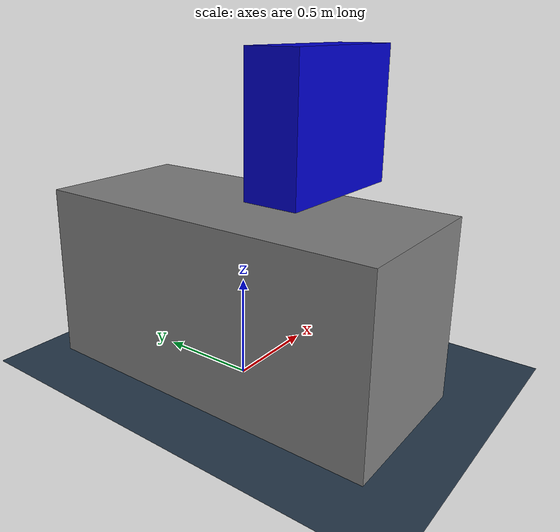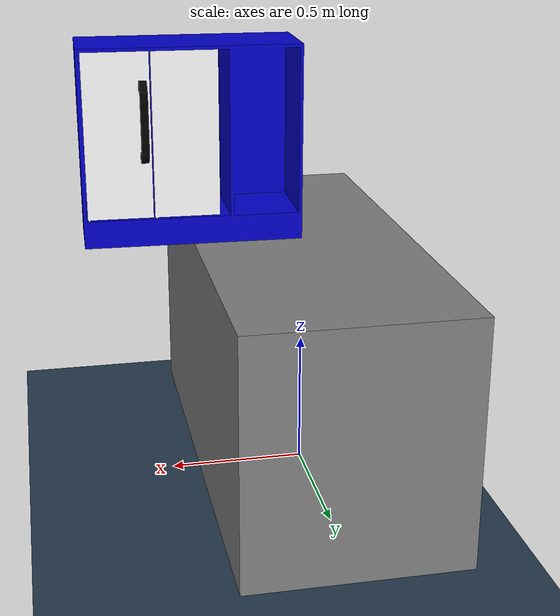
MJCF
<?xml version="1.0" encoding="utf-8"?>
<mujoco model="table_cabinet_arena">
	<visual>
		<map fogend="5" fogstart="3" force="0.1" zfar="10" znear="0.01"/>
		<quality shadowsize="2048"/>
		<global offheight="256" offwidth="256"/>
	</visual>
	<asset>
        <mesh name="cabinet_body" file="./cabinet/cabinet_body.STL" scale="0.001 0.001 0.001" />
        <mesh name="cabinet_door" file="./cabinet/cabinet_door.STL" scale="0.001 0.001 0.001" />
        <mesh name="cabinet_knob" file="./cabinet/cabinet_knob.STL" scale="0.001 0.001 0.001" />
		<texture builtin="flat" height="32" name="wall_geom" type="2d" width="32"/>
		<texture builtin="flat" height="32" name="frame_geom" type="2d" width="32"/>
		<texture builtin="flat" height="32" name="door_geom" type="2d" width="32"/>
		<texture builtin="flat" height="32" name="knob_geom" type="2d" width="32"/>
		<texture builtin="gradient" height="128" rgb1="0.4 0.6 0.8" rgb2="0 0 0" type="skybox" width="128"/>
		<texture builtin="checker" height="512" name="texplane" rgb1="0.2 0.3 0.4" rgb2="0.1 0.15 0.2" type="2d" width="512"/>
		<material name="Paint" shininess="0.46" specular="0.44" texture="wall_geom"/>
		<material name="Wood" shininess="0.14" specular="0.16" texture="frame_geom"/>
		<material name="Carpet" shininess="0.04" specular="0.03" texture="door_geom"/>
		<material name="Metal" shininess="0.89" specular="0.95" texture="knob_geom"/>
		<material name="Floor" texture="texplane"/>
	</asset>

	<default>
		<joint armature="1" damping="1" limited="true"/>
		<default class="wall">
			<geom rgba="0.62 0.11 0.58 1.0" type="mesh"/>
		</default>
		<default class="frame">
			<geom rgba="0.73 0.72 0.73 1.0" type="mesh"/>
		</default>
		<default class="door">
			<geom rgba="0 0 0.8 1" type="mesh"/>
		</default>
		<default class="door_knob">
			<geom condim="4" rgba="0.3 0.88 0.43 1.0" type="mesh"/>
		</default>
	</default>
	<worldbody>
		<light diffuse="0.9 1.0 0.9" dir="0.2 -0.16 -0.43" directional="true" pos="1.05 4.16 5.09"/>
		<light diffuse="1.0 0.9 0.9" dir="-0.24 0.17 -0.49" directional="true" pos="4.97 4.53 3.09"/>s
		<geom material="Floor" name="floor" pos="0 0 -0.05" size="4.0 4.0 0.05" type="plane"/>

		<body name="table" pos="0 0 0.45" euler='0 0 0'>
			<geom pos="0 0 0" size="0.4 0.9 0.45" type="box" name="table_collision" friction="1 0.005 0.0001"/>
			<geom pos="0 0 0" size="0.4 0.9 0.45" type="box" conaffinity="0" contype="0" group="1" name="table_visual"/>
			<site pos="0 0 0" name="table_top" size="0.001 0.001 0.001" rgba="0 0 0 0"/>
		</body>

		<light diffuse=".8 .8 .8" dir="0 -.15 -1" directional="false" pos="1 1 4.0" specular="0.3 0.3 0.3" castshadow="false"/>
		<light diffuse=".8 .8 .8" dir="0 -.15 -1" directional="false" pos="-3. -3. 4.0" specular="0.3 0.3 0.3" castshadow="false"/>
		<!-- front view -->
		<camera mode="fixed" name="frontview" pos="1.6 0 1.45" quat="0.56 0.43 0.43 0.56"/>
		<!-- bird view -->
		<camera mode="fixed" name="birdview" pos="-0.2 0 3.0" quat="0.7071 0 0 0.7071"/>
		<!-- agent view -->
		<camera mode="fixed" name="agentview" pos="0.5 0 1.35" quat="0.653 0.271 0.271 0.653"/>

    <body childclass="door" name="frame_link" pos="0 0 0.9" euler='0 0 -1.5708'>
        <inertial mass="100" pos="0 0 0" diaginertia="0.0001 0.0001 0.0001"/>
        <geom quat="0.707388 0.706825 0 0" type="mesh" contype="0" conaffinity="1" group="1"   mesh="cabinet_body"/>
        <body childclass="door" name="door_link" pos="0.774 -0.0055 0.095">
            <inertial pos="0 0 0" quat="0.707107 0 0 0.707107" mass="0.1144" diaginertia="0.071059 0.051411 0.019672" />
            <joint name="hinge0" pos="0 0 0" axis="0 0 1" stiffness="0.1" limited="true" range="-1.57 0" />
            <geom  pos="0.006 -0.0055 0" quat="0.000563312 0.000562864 0.706825 0.707388" type="mesh" contype="0"
                    conaffinity="1" group="1" rgba="1 1 1 1" mesh="cabinet_door"  />
			<body name="knob_link">
				<inertial pos="0 0 0" quat="0.707107 0 0 0.707107" mass="0.199" diaginertia="0.028487 0.020509 0.0087724" />
				<joint name="door_to_knob" pos="0 0 0" damping="0.09" axis="0 0 1" range="0.0 0.001"/>
				<geom friction="1 0 0" pos="-0.2175 0.0055 0.217" condim="4" name='cabinet_knob' type="mesh" contype="1" conaffinity="1" group="1" rgba="0 0 0 1" mesh="cabinet_knob" />
				<geom name='center_cabinet_knob' type="cylinder" conaffinity="0" fromto="-0.2051 0.064 0.363  -0.205 0.064 0.363" size="0.00001" rgba="1 0 0 1" group="1"/>

			</body>
        </body>
      <body name="door_link2" pos="0.774 -0.0055 0.095">
        <inertial pos="0 0 0" quat="0.707107 0 0 0.707107" mass="1.144" diaginertia="0.071059 0.051411 0.019672" />
        <joint name="base_to_door2" pos="0 0 0" axis="0 0 1" limited="true" range="-0.01 0" />
        <geom pos="-0.235 -0.0055 0" quat="0.000563312 0.000562864 0.706825 0.707388" type="mesh" contype="0" conaffinity="1" group="1" rgba="1 1 1 1" mesh="cabinet_door" />
      </body>
    </body>
	</worldbody>
</mujoco>
